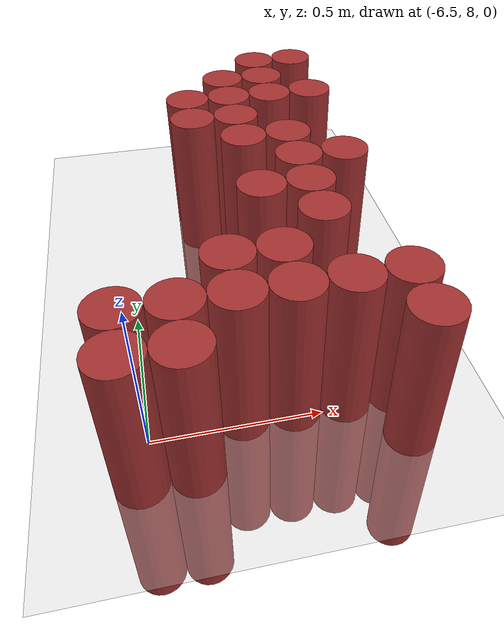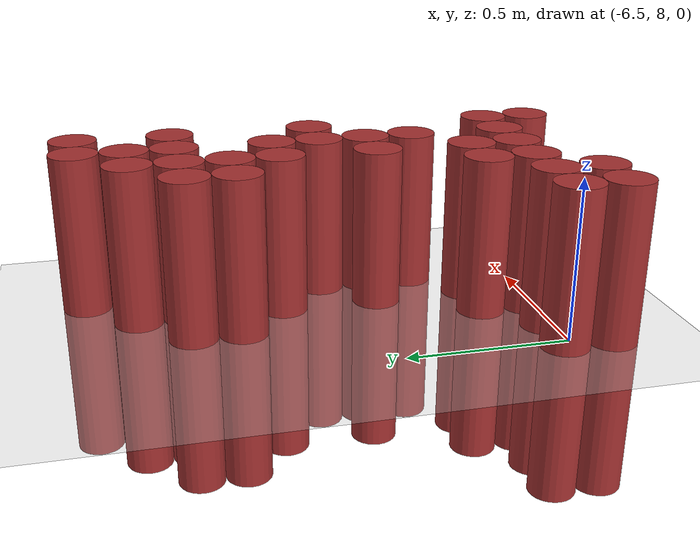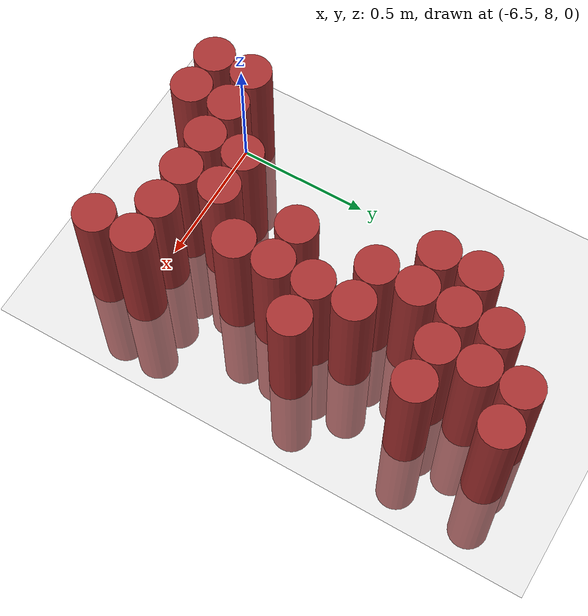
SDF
<sdf version="1.6">
 <world name="default">
  <model name="ground_plane">
   <static>1</static>
   <link name="link">
    <collision name="collision">
     <geometry><plane><normal>0 0 1</normal><size>100 100</size></plane></geometry>
     <surface><friction><ode><mu>100</mu><mu2>50</mu2></ode></friction></surface>
    </collision>
    <visual name="visual">
     <cast_shadows>0</cast_shadows>
     <geometry><plane><normal>0 0 1</normal><size>100 100</size></plane></geometry>
     <material>
      <script><uri>file://media/materials/scripts/gazebo.material</uri><name>Gazebo/Grey</name></script>
     </material>
    </visual>
   </link>
  </model>
  <model name="unit_cylinder_223">
   <static>1</static>
   <pose>-6.525000 7.875000 0.000000 0.000000 0.000000 0.000000</pose>
   <link name="link">
    <inertial>
     <mass>1</mass>
     <inertia><ixx>0.145833</ixx><ixy>0</ixy><ixz>0</ixz><iyy>0.145833</iyy><iyz>0</iyz><izz>0.125</izz></inertia>
    </inertial>
    <collision name="collision">
     <geometry><cylinder><radius>0.075000</radius><length>1</length></cylinder></geometry>
    </collision>
    <visual name="visual">
     <geometry><cylinder><radius>0.075000</radius><length>1</length></cylinder></geometry>
     <material>
      <ambient>0.648000 0.192000 0.192000 1</ambient>
      <diffuse>0.648000 0.192000 0.192000 1</diffuse>
     </material>
     <material>
      <script><name>Gazebo/Grey</name><uri>file://media/materials/scripts/gazebo.material</uri></script>
     </material>
    </visual>
   </link>
  </model>
  <model name="unit_cylinder_224">
   <static>1</static>
   <pose>-6.525000 8.025000 0.000000 0.000000 0.000000 0.000000</pose>
   <link name="link">
    <inertial>
     <mass>1</mass>
     <inertia><ixx>0.145833</ixx><ixy>0</ixy><ixz>0</ixz><iyy>0.145833</iyy><iyz>0</iyz><izz>0.125</izz></inertia>
    </inertial>
    <collision name="collision">
     <geometry><cylinder><radius>0.075000</radius><length>1</length></cylinder></geometry>
    </collision>
    <visual name="visual">
     <geometry><cylinder><radius>0.075000</radius><length>1</length></cylinder></geometry>
     <material>
      <ambient>0.648000 0.192000 0.192000 1</ambient>
      <diffuse>0.648000 0.192000 0.192000 1</diffuse>
     </material>
     <material>
      <script><name>Gazebo/Grey</name><uri>file://media/materials/scripts/gazebo.material</uri></script>
     </material>
    </visual>
   </link>
  </model>
  <model name="unit_cylinder_231">
   <static>1</static>
   <pose>-6.375000 7.875000 0.000000 0.000000 0.000000 0.000000</pose>
   <link name="link">
    <inertial>
     <mass>1</mass>
     <inertia><ixx>0.145833</ixx><ixy>0</ixy><ixz>0</ixz><iyy>0.145833</iyy><iyz>0</iyz><izz>0.125</izz></inertia>
    </inertial>
    <collision name="collision">
     <geometry><cylinder><radius>0.075000</radius><length>1</length></cylinder></geometry>
    </collision>
    <visual name="visual">
     <geometry><cylinder><radius>0.075000</radius><length>1</length></cylinder></geometry>
     <material>
      <ambient>0.648000 0.192000 0.192000 1</ambient>
      <diffuse>0.648000 0.192000 0.192000 1</diffuse>
     </material>
     <material>
      <script><name>Gazebo/Grey</name><uri>file://media/materials/scripts/gazebo.material</uri></script>
     </material>
    </visual>
   </link>
  </model>
  <model name="unit_cylinder_232">
   <static>1</static>
   <pose>-6.375000 8.025000 0.000000 0.000000 0.000000 0.000000</pose>
   <link name="link">
    <inertial>
     <mass>1</mass>
     <inertia><ixx>0.145833</ixx><ixy>0</ixy><ixz>0</ixz><iyy>0.145833</iyy><iyz>0</iyz><izz>0.125</izz></inertia>
    </inertial>
    <collision name="collision">
     <geometry><cylinder><radius>0.075000</radius><length>1</length></cylinder></geometry>
    </collision>
    <visual name="visual">
     <geometry><cylinder><radius>0.075000</radius><length>1</length></cylinder></geometry>
     <material>
      <ambient>0.648000 0.192000 0.192000 1</ambient>
      <diffuse>0.648000 0.192000 0.192000 1</diffuse>
     </material>
     <material>
      <script><name>Gazebo/Grey</name><uri>file://media/materials/scripts/gazebo.material</uri></script>
     </material>
    </visual>
   </link>
  </model>
  <model name="unit_cylinder_243">
   <static>1</static>
   <pose>-6.225000 8.025000 0.000000 0.000000 0.000000 0.000000</pose>
   <link name="link">
    <inertial>
     <mass>1</mass>
     <inertia><ixx>0.145833</ixx><ixy>0</ixy><ixz>0</ixz><iyy>0.145833</iyy><iyz>0</iyz><izz>0.125</izz></inertia>
    </inertial>
    <collision name="collision">
     <geometry><cylinder><radius>0.075000</radius><length>1</length></cylinder></geometry>
    </collision>
    <visual name="visual">
     <geometry><cylinder><radius>0.075000</radius><length>1</length></cylinder></geometry>
     <material>
      <ambient>0.648000 0.192000 0.192000 1</ambient>
      <diffuse>0.648000 0.192000 0.192000 1</diffuse>
     </material>
     <material>
      <script><name>Gazebo/Grey</name><uri>file://media/materials/scripts/gazebo.material</uri></script>
     </material>
    </visual>
   </link>
  </model>
  <model name="unit_cylinder_244">
   <static>1</static>
   <pose>-6.225000 8.175000 0.000000 0.000000 0.000000 0.000000</pose>
   <link name="link">
    <inertial>
     <mass>1</mass>
     <inertia><ixx>0.145833</ixx><ixy>0</ixy><ixz>0</ixz><iyy>0.145833</iyy><iyz>0</iyz><izz>0.125</izz></inertia>
    </inertial>
    <collision name="collision">
     <geometry><cylinder><radius>0.075000</radius><length>1</length></cylinder></geometry>
    </collision>
    <visual name="visual">
     <geometry><cylinder><radius>0.075000</radius><length>1</length></cylinder></geometry>
     <material>
      <ambient>0.648000 0.192000 0.192000 1</ambient>
      <diffuse>0.648000 0.192000 0.192000 1</diffuse>
     </material>
     <material>
      <script><name>Gazebo/Grey</name><uri>file://media/materials/scripts/gazebo.material</uri></script>
     </material>
    </visual>
   </link>
  </model>
  <model name="unit_cylinder_245">
   <static>1</static>
   <pose>-6.225000 8.925000 0.000000 0.000000 0.000000 0.000000</pose>
   <link name="link">
    <inertial>
     <mass>1</mass>
     <inertia><ixx>0.145833</ixx><ixy>0</ixy><ixz>0</ixz><iyy>0.145833</iyy><iyz>0</iyz><izz>0.125</izz></inertia>
    </inertial>
    <collision name="collision">
     <geometry><cylinder><radius>0.075000</radius><length>1</length></cylinder></geometry>
    </collision>
    <visual name="visual">
     <geometry><cylinder><radius>0.075000</radius><length>1</length></cylinder></geometry>
     <material>
      <ambient>0.648000 0.192000 0.192000 1</ambient>
      <diffuse>0.648000 0.192000 0.192000 1</diffuse>
     </material>
     <material>
      <script><name>Gazebo/Grey</name><uri>file://media/materials/scripts/gazebo.material</uri></script>
     </material>
    </visual>
   </link>
  </model>
  <model name="unit_cylinder_246">
   <static>1</static>
   <pose>-6.225000 9.075000 0.000000 0.000000 0.000000 0.000000</pose>
   <link name="link">
    <inertial>
     <mass>1</mass>
     <inertia><ixx>0.145833</ixx><ixy>0</ixy><ixz>0</ixz><iyy>0.145833</iyy><iyz>0</iyz><izz>0.125</izz></inertia>
    </inertial>
    <collision name="collision">
     <geometry><cylinder><radius>0.075000</radius><length>1</length></cylinder></geometry>
    </collision>
    <visual name="visual">
     <geometry><cylinder><radius>0.075000</radius><length>1</length></cylinder></geometry>
     <material>
      <ambient>0.648000 0.192000 0.192000 1</ambient>
      <diffuse>0.648000 0.192000 0.192000 1</diffuse>
     </material>
     <material>
      <script><name>Gazebo/Grey</name><uri>file://media/materials/scripts/gazebo.material</uri></script>
     </material>
    </visual>
   </link>
  </model>
  <model name="unit_cylinder_254">
   <static>1</static>
   <pose>-6.075000 8.025000 0.000000 0.000000 0.000000 0.000000</pose>
   <link name="link">
    <inertial>
     <mass>1</mass>
     <inertia><ixx>0.145833</ixx><ixy>0</ixy><ixz>0</ixz><iyy>0.145833</iyy><iyz>0</iyz><izz>0.125</izz></inertia>
    </inertial>
    <collision name="collision">
     <geometry><cylinder><radius>0.075000</radius><length>1</length></cylinder></geometry>
    </collision>
    <visual name="visual">
     <geometry><cylinder><radius>0.075000</radius><length>1</length></cylinder></geometry>
     <material>
      <ambient>0.648000 0.192000 0.192000 1</ambient>
      <diffuse>0.648000 0.192000 0.192000 1</diffuse>
     </material>
     <material>
      <script><name>Gazebo/Grey</name><uri>file://media/materials/scripts/gazebo.material</uri></script>
     </material>
    </visual>
   </link>
  </model>
  <model name="unit_cylinder_255">
   <static>1</static>
   <pose>-6.075000 8.175000 0.000000 0.000000 0.000000 0.000000</pose>
   <link name="link">
    <inertial>
     <mass>1</mass>
     <inertia><ixx>0.145833</ixx><ixy>0</ixy><ixz>0</ixz><iyy>0.145833</iyy><iyz>0</iyz><izz>0.125</izz></inertia>
    </inertial>
    <collision name="collision">
     <geometry><cylinder><radius>0.075000</radius><length>1</length></cylinder></geometry>
    </collision>
    <visual name="visual">
     <geometry><cylinder><radius>0.075000</radius><length>1</length></cylinder></geometry>
     <material>
      <ambient>0.648000 0.192000 0.192000 1</ambient>
      <diffuse>0.648000 0.192000 0.192000 1</diffuse>
     </material>
     <material>
      <script><name>Gazebo/Grey</name><uri>file://media/materials/scripts/gazebo.material</uri></script>
     </material>
    </visual>
   </link>
  </model>
  <model name="unit_cylinder_256">
   <static>1</static>
   <pose>-6.075000 8.475000 0.000000 0.000000 0.000000 0.000000</pose>
   <link name="link">
    <inertial>
     <mass>1</mass>
     <inertia><ixx>0.145833</ixx><ixy>0</ixy><ixz>0</ixz><iyy>0.145833</iyy><iyz>0</iyz><izz>0.125</izz></inertia>
    </inertial>
    <collision name="collision">
     <geometry><cylinder><radius>0.075000</radius><length>1</length></cylinder></geometry>
    </collision>
    <visual name="visual">
     <geometry><cylinder><radius>0.075000</radius><length>1</length></cylinder></geometry>
     <material>
      <ambient>0.648000 0.192000 0.192000 1</ambient>
      <diffuse>0.648000 0.192000 0.192000 1</diffuse>
     </material>
     <material>
      <script><name>Gazebo/Grey</name><uri>file://media/materials/scripts/gazebo.material</uri></script>
     </material>
    </visual>
   </link>
  </model>
  <model name="unit_cylinder_257">
   <static>1</static>
   <pose>-6.075000 8.775000 0.000000 0.000000 0.000000 0.000000</pose>
   <link name="link">
    <inertial>
     <mass>1</mass>
     <inertia><ixx>0.145833</ixx><ixy>0</ixy><ixz>0</ixz><iyy>0.145833</iyy><iyz>0</iyz><izz>0.125</izz></inertia>
    </inertial>
    <collision name="collision">
     <geometry><cylinder><radius>0.075000</radius><length>1</length></cylinder></geometry>
    </collision>
    <visual name="visual">
     <geometry><cylinder><radius>0.075000</radius><length>1</length></cylinder></geometry>
     <material>
      <ambient>0.648000 0.192000 0.192000 1</ambient>
      <diffuse>0.648000 0.192000 0.192000 1</diffuse>
     </material>
     <material>
      <script><name>Gazebo/Grey</name><uri>file://media/materials/scripts/gazebo.material</uri></script>
     </material>
    </visual>
   </link>
  </model>
  <model name="unit_cylinder_258">
   <static>1</static>
   <pose>-6.075000 8.925000 0.000000 0.000000 0.000000 0.000000</pose>
   <link name="link">
    <inertial>
     <mass>1</mass>
     <inertia><ixx>0.145833</ixx><ixy>0</ixy><ixz>0</ixz><iyy>0.145833</iyy><iyz>0</iyz><izz>0.125</izz></inertia>
    </inertial>
    <collision name="collision">
     <geometry><cylinder><radius>0.075000</radius><length>1</length></cylinder></geometry>
    </collision>
    <visual name="visual">
     <geometry><cylinder><radius>0.075000</radius><length>1</length></cylinder></geometry>
     <material>
      <ambient>0.648000 0.192000 0.192000 1</ambient>
      <diffuse>0.648000 0.192000 0.192000 1</diffuse>
     </material>
     <material>
      <script><name>Gazebo/Grey</name><uri>file://media/materials/scripts/gazebo.material</uri></script>
     </material>
    </visual>
   </link>
  </model>
  <model name="unit_cylinder_259">
   <static>1</static>
   <pose>-6.075000 9.075000 0.000000 0.000000 0.000000 0.000000</pose>
   <link name="link">
    <inertial>
     <mass>1</mass>
     <inertia><ixx>0.145833</ixx><ixy>0</ixy><ixz>0</ixz><iyy>0.145833</iyy><iyz>0</iyz><izz>0.125</izz></inertia>
    </inertial>
    <collision name="collision">
     <geometry><cylinder><radius>0.075000</radius><length>1</length></cylinder></geometry>
    </collision>
    <visual name="visual">
     <geometry><cylinder><radius>0.075000</radius><length>1</length></cylinder></geometry>
     <material>
      <ambient>0.648000 0.192000 0.192000 1</ambient>
      <diffuse>0.648000 0.192000 0.192000 1</diffuse>
     </material>
     <material>
      <script><name>Gazebo/Grey</name><uri>file://media/materials/scripts/gazebo.material</uri></script>
     </material>
    </visual>
   </link>
  </model>
  <model name="unit_cylinder_260">
   <static>1</static>
   <pose>-6.075000 9.225000 0.000000 0.000000 0.000000 0.000000</pose>
   <link name="link">
    <inertial>
     <mass>1</mass>
     <inertia><ixx>0.145833</ixx><ixy>0</ixy><ixz>0</ixz><iyy>0.145833</iyy><iyz>0</iyz><izz>0.125</izz></inertia>
    </inertial>
    <collision name="collision">
     <geometry><cylinder><radius>0.075000</radius><length>1</length></cylinder></geometry>
    </collision>
    <visual name="visual">
     <geometry><cylinder><radius>0.075000</radius><length>1</length></cylinder></geometry>
     <material>
      <ambient>0.648000 0.192000 0.192000 1</ambient>
      <diffuse>0.648000 0.192000 0.192000 1</diffuse>
     </material>
     <material>
      <script><name>Gazebo/Grey</name><uri>file://media/materials/scripts/gazebo.material</uri></script>
     </material>
    </visual>
   </link>
  </model>
  <model name="unit_cylinder_261">
   <static>1</static>
   <pose>-5.925000 8.025000 0.000000 0.000000 0.000000 0.000000</pose>
   <link name="link">
    <inertial>
     <mass>1</mass>
     <inertia><ixx>0.145833</ixx><ixy>0</ixy><ixz>0</ixz><iyy>0.145833</iyy><iyz>0</iyz><izz>0.125</izz></inertia>
    </inertial>
    <collision name="collision">
     <geometry><cylinder><radius>0.075000</radius><length>1</length></cylinder></geometry>
    </collision>
    <visual name="visual">
     <geometry><cylinder><radius>0.075000</radius><length>1</length></cylinder></geometry>
     <material>
      <ambient>0.648000 0.192000 0.192000 1</ambient>
      <diffuse>0.648000 0.192000 0.192000 1</diffuse>
     </material>
     <material>
      <script><name>Gazebo/Grey</name><uri>file://media/materials/scripts/gazebo.material</uri></script>
     </material>
    </visual>
   </link>
  </model>
  <model name="unit_cylinder_262">
   <static>1</static>
   <pose>-5.925000 8.325000 0.000000 0.000000 0.000000 0.000000</pose>
   <link name="link">
    <inertial>
     <mass>1</mass>
     <inertia><ixx>0.145833</ixx><ixy>0</ixy><ixz>0</ixz><iyy>0.145833</iyy><iyz>0</iyz><izz>0.125</izz></inertia>
    </inertial>
    <collision name="collision">
     <geometry><cylinder><radius>0.075000</radius><length>1</length></cylinder></geometry>
    </collision>
    <visual name="visual">
     <geometry><cylinder><radius>0.075000</radius><length>1</length></cylinder></geometry>
     <material>
      <ambient>0.648000 0.192000 0.192000 1</ambient>
      <diffuse>0.648000 0.192000 0.192000 1</diffuse>
     </material>
     <material>
      <script><name>Gazebo/Grey</name><uri>file://media/materials/scripts/gazebo.material</uri></script>
     </material>
    </visual>
   </link>
  </model>
  <model name="unit_cylinder_263">
   <static>1</static>
   <pose>-5.925000 8.475000 0.000000 0.000000 0.000000 0.000000</pose>
   <link name="link">
    <inertial>
     <mass>1</mass>
     <inertia><ixx>0.145833</ixx><ixy>0</ixy><ixz>0</ixz><iyy>0.145833</iyy><iyz>0</iyz><izz>0.125</izz></inertia>
    </inertial>
    <collision name="collision">
     <geometry><cylinder><radius>0.075000</radius><length>1</length></cylinder></geometry>
    </collision>
    <visual name="visual">
     <geometry><cylinder><radius>0.075000</radius><length>1</length></cylinder></geometry>
     <material>
      <ambient>0.648000 0.192000 0.192000 1</ambient>
      <diffuse>0.648000 0.192000 0.192000 1</diffuse>
     </material>
     <material>
      <script><name>Gazebo/Grey</name><uri>file://media/materials/scripts/gazebo.material</uri></script>
     </material>
    </visual>
   </link>
  </model>
  <model name="unit_cylinder_264">
   <static>1</static>
   <pose>-5.925000 8.625000 0.000000 0.000000 0.000000 0.000000</pose>
   <link name="link">
    <inertial>
     <mass>1</mass>
     <inertia><ixx>0.145833</ixx><ixy>0</ixy><ixz>0</ixz><iyy>0.145833</iyy><iyz>0</iyz><izz>0.125</izz></inertia>
    </inertial>
    <collision name="collision">
     <geometry><cylinder><radius>0.075000</radius><length>1</length></cylinder></geometry>
    </collision>
    <visual name="visual">
     <geometry><cylinder><radius>0.075000</radius><length>1</length></cylinder></geometry>
     <material>
      <ambient>0.648000 0.192000 0.192000 1</ambient>
      <diffuse>0.648000 0.192000 0.192000 1</diffuse>
     </material>
     <material>
      <script><name>Gazebo/Grey</name><uri>file://media/materials/scripts/gazebo.material</uri></script>
     </material>
    </visual>
   </link>
  </model>
  <model name="unit_cylinder_265">
   <static>1</static>
   <pose>-5.925000 8.775000 0.000000 0.000000 0.000000 0.000000</pose>
   <link name="link">
    <inertial>
     <mass>1</mass>
     <inertia><ixx>0.145833</ixx><ixy>0</ixy><ixz>0</ixz><iyy>0.145833</iyy><iyz>0</iyz><izz>0.125</izz></inertia>
    </inertial>
    <collision name="collision">
     <geometry><cylinder><radius>0.075000</radius><length>1</length></cylinder></geometry>
    </collision>
    <visual name="visual">
     <geometry><cylinder><radius>0.075000</radius><length>1</length></cylinder></geometry>
     <material>
      <ambient>0.648000 0.192000 0.192000 1</ambient>
      <diffuse>0.648000 0.192000 0.192000 1</diffuse>
     </material>
     <material>
      <script><name>Gazebo/Grey</name><uri>file://media/materials/scripts/gazebo.material</uri></script>
     </material>
    </visual>
   </link>
  </model>
  <model name="unit_cylinder_266">
   <static>1</static>
   <pose>-5.925000 9.075000 0.000000 0.000000 0.000000 0.000000</pose>
   <link name="link">
    <inertial>
     <mass>1</mass>
     <inertia><ixx>0.145833</ixx><ixy>0</ixy><ixz>0</ixz><iyy>0.145833</iyy><iyz>0</iyz><izz>0.125</izz></inertia>
    </inertial>
    <collision name="collision">
     <geometry><cylinder><radius>0.075000</radius><length>1</length></cylinder></geometry>
    </collision>
    <visual name="visual">
     <geometry><cylinder><radius>0.075000</radius><length>1</length></cylinder></geometry>
     <material>
      <ambient>0.648000 0.192000 0.192000 1</ambient>
      <diffuse>0.648000 0.192000 0.192000 1</diffuse>
     </material>
     <material>
      <script><name>Gazebo/Grey</name><uri>file://media/materials/scripts/gazebo.material</uri></script>
     </material>
    </visual>
   </link>
  </model>
  <model name="unit_cylinder_267">
   <static>1</static>
   <pose>-5.925000 9.225000 0.000000 0.000000 0.000000 0.000000</pose>
   <link name="link">
    <inertial>
     <mass>1</mass>
     <inertia><ixx>0.145833</ixx><ixy>0</ixy><ixz>0</ixz><iyy>0.145833</iyy><iyz>0</iyz><izz>0.125</izz></inertia>
    </inertial>
    <collision name="collision">
     <geometry><cylinder><radius>0.075000</radius><length>1</length></cylinder></geometry>
    </collision>
    <visual name="visual">
     <geometry><cylinder><radius>0.075000</radius><length>1</length></cylinder></geometry>
     <material>
      <ambient>0.648000 0.192000 0.192000 1</ambient>
      <diffuse>0.648000 0.192000 0.192000 1</diffuse>
     </material>
     <material>
      <script><name>Gazebo/Grey</name><uri>file://media/materials/scripts/gazebo.material</uri></script>
     </material>
    </visual>
   </link>
  </model>
  <model name="unit_cylinder_268">
   <static>1</static>
   <pose>-5.925000 9.375000 0.000000 0.000000 0.000000 0.000000</pose>
   <link name="link">
    <inertial>
     <mass>1</mass>
     <inertia><ixx>0.145833</ixx><ixy>0</ixy><ixz>0</ixz><iyy>0.145833</iyy><iyz>0</iyz><izz>0.125</izz></inertia>
    </inertial>
    <collision name="collision">
     <geometry><cylinder><radius>0.075000</radius><length>1</length></cylinder></geometry>
    </collision>
    <visual name="visual">
     <geometry><cylinder><radius>0.075000</radius><length>1</length></cylinder></geometry>
     <material>
      <ambient>0.648000 0.192000 0.192000 1</ambient>
      <diffuse>0.648000 0.192000 0.192000 1</diffuse>
     </material>
     <material>
      <script><name>Gazebo/Grey</name><uri>file://media/materials/scripts/gazebo.material</uri></script>
     </material>
    </visual>
   </link>
  </model>
  <model name="unit_cylinder_270">
   <static>1</static>
   <pose>-5.775000 7.875000 0.000000 0.000000 0.000000 0.000000</pose>
   <link name="link">
    <inertial>
     <mass>1</mass>
     <inertia><ixx>0.145833</ixx><ixy>0</ixy><ixz>0</ixz><iyy>0.145833</iyy><iyz>0</iyz><izz>0.125</izz></inertia>
    </inertial>
    <collision name="collision">
     <geometry><cylinder><radius>0.075000</radius><length>1</length></cylinder></geometry>
    </collision>
    <visual name="visual">
     <geometry><cylinder><radius>0.075000</radius><length>1</length></cylinder></geometry>
     <material>
      <ambient>0.648000 0.192000 0.192000 1</ambient>
      <diffuse>0.648000 0.192000 0.192000 1</diffuse>
     </material>
     <material>
      <script><name>Gazebo/Grey</name><uri>file://media/materials/scripts/gazebo.material</uri></script>
     </material>
    </visual>
   </link>
  </model>
  <model name="unit_cylinder_271">
   <static>1</static>
   <pose>-5.775000 8.025000 0.000000 0.000000 0.000000 0.000000</pose>
   <link name="link">
    <inertial>
     <mass>1</mass>
     <inertia><ixx>0.145833</ixx><ixy>0</ixy><ixz>0</ixz><iyy>0.145833</iyy><iyz>0</iyz><izz>0.125</izz></inertia>
    </inertial>
    <collision name="collision">
     <geometry><cylinder><radius>0.075000</radius><length>1</length></cylinder></geometry>
    </collision>
    <visual name="visual">
     <geometry><cylinder><radius>0.075000</radius><length>1</length></cylinder></geometry>
     <material>
      <ambient>0.648000 0.192000 0.192000 1</ambient>
      <diffuse>0.648000 0.192000 0.192000 1</diffuse>
     </material>
     <material>
      <script><name>Gazebo/Grey</name><uri>file://media/materials/scripts/gazebo.material</uri></script>
     </material>
    </visual>
   </link>
  </model>
  <model name="unit_cylinder_272">
   <static>1</static>
   <pose>-5.775000 8.625000 0.000000 0.000000 0.000000 0.000000</pose>
   <link name="link">
    <inertial>
     <mass>1</mass>
     <inertia><ixx>0.145833</ixx><ixy>0</ixy><ixz>0</ixz><iyy>0.145833</iyy><iyz>0</iyz><izz>0.125</izz></inertia>
    </inertial>
    <collision name="collision">
     <geometry><cylinder><radius>0.075000</radius><length>1</length></cylinder></geometry>
    </collision>
    <visual name="visual">
     <geometry><cylinder><radius>0.075000</radius><length>1</length></cylinder></geometry>
     <material>
      <ambient>0.648000 0.192000 0.192000 1</ambient>
      <diffuse>0.648000 0.192000 0.192000 1</diffuse>
     </material>
     <material>
      <script><name>Gazebo/Grey</name><uri>file://media/materials/scripts/gazebo.material</uri></script>
     </material>
    </visual>
   </link>
  </model>
  <model name="unit_cylinder_273">
   <static>1</static>
   <pose>-5.775000 9.075000 0.000000 0.000000 0.000000 0.000000</pose>
   <link name="link">
    <inertial>
     <mass>1</mass>
     <inertia><ixx>0.145833</ixx><ixy>0</ixy><ixz>0</ixz><iyy>0.145833</iyy><iyz>0</iyz><izz>0.125</izz></inertia>
    </inertial>
    <collision name="collision">
     <geometry><cylinder><radius>0.075000</radius><length>1</length></cylinder></geometry>
    </collision>
    <visual name="visual">
     <geometry><cylinder><radius>0.075000</radius><length>1</length></cylinder></geometry>
     <material>
      <ambient>0.648000 0.192000 0.192000 1</ambient>
      <diffuse>0.648000 0.192000 0.192000 1</diffuse>
     </material>
     <material>
      <script><name>Gazebo/Grey</name><uri>file://media/materials/scripts/gazebo.material</uri></script>
     </material>
    </visual>
   </link>
  </model>
  <model name="unit_cylinder_274">
   <static>1</static>
   <pose>-5.775000 9.375000 0.000000 0.000000 0.000000 0.000000</pose>
   <link name="link">
    <inertial>
     <mass>1</mass>
     <inertia><ixx>0.145833</ixx><ixy>0</ixy><ixz>0</ixz><iyy>0.145833</iyy><iyz>0</iyz><izz>0.125</izz></inertia>
    </inertial>
    <collision name="collision">
     <geometry><cylinder><radius>0.075000</radius><length>1</length></cylinder></geometry>
    </collision>
    <visual name="visual">
     <geometry><cylinder><radius>0.075000</radius><length>1</length></cylinder></geometry>
     <material>
      <ambient>0.648000 0.192000 0.192000 1</ambient>
      <diffuse>0.648000 0.192000 0.192000 1</diffuse>
     </material>
     <material>
      <script><name>Gazebo/Grey</name><uri>file://media/materials/scripts/gazebo.material</uri></script>
     </material>
    </visual>
   </link>
  </model>
 </world>
</sdf>
